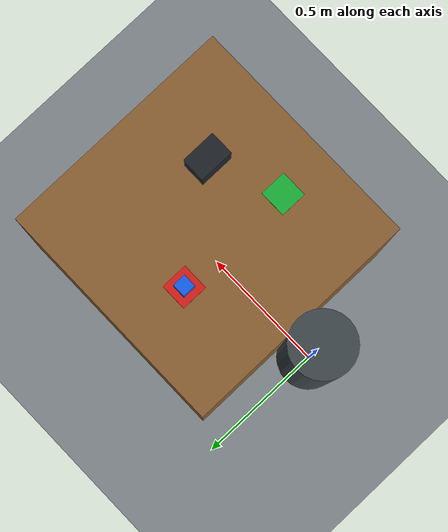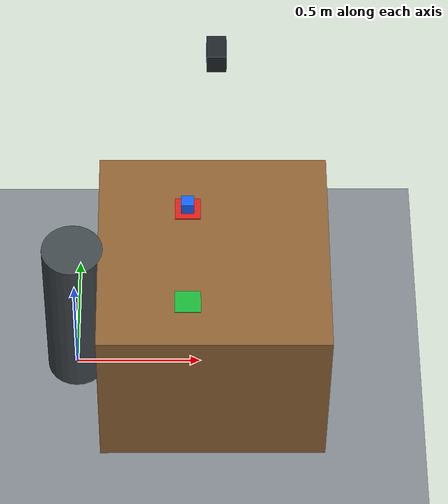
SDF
<?xml version="1.0"?>
<sdf version="1.9">
  <world name="panda_table">
    <physics name="1ms" type="ignored">
      <max_step_size>0.001</max_step_size>
      <real_time_factor>1.0</real_time_factor>
    </physics>

    <plugin filename="gz-sim-physics-system" name="gz::sim::systems::Physics"/>
    <plugin filename="gz-sim-user-commands-system" name="gz::sim::systems::UserCommands"/>
    <plugin filename="gz-sim-scene-broadcaster-system" name="gz::sim::systems::SceneBroadcaster"/>
    <plugin filename="gz-sim-sensors-system" name="gz::sim::systems::Sensors">
      <render_engine>ogre2</render_engine>
    </plugin>

    <light type="directional" name="sun">
      <pose>0 0 10 0 0 0</pose>
      <cast_shadows>true</cast_shadows>
      <diffuse>0.9 0.9 0.9 1</diffuse>
      <specular>0.2 0.2 0.2 1</specular>
      <direction>-0.5 0.2 -0.9</direction>
    </light>

    <model name="ground_plane">
      <static>true</static>
      <link name="ground_link">
        <collision name="collision">
          <geometry><plane><normal>0 0 1</normal><size>20 20</size></plane></geometry>
        </collision>
        <visual name="visual">
          <geometry><plane><normal>0 0 1</normal><size>20 20</size></plane></geometry>
          <material><ambient>0.35 0.38 0.4 1</ambient><diffuse>0.5 0.53 0.55 1</diffuse></material>
        </visual>
      </link>
    </model>

    <model name="table">
      <static>true</static>
      <pose>0.55 0 0.375 0 0 0</pose>
      <link name="table_link">
        <collision name="collision"><geometry><box><size>0.9 0.9 0.75</size></box></geometry></collision>
        <visual name="visual">
          <geometry><box><size>0.9 0.9 0.75</size></box></geometry>
          <material><ambient>0.33 0.22 0.12 1</ambient><diffuse>0.55 0.38 0.2 1</diffuse></material>
        </visual>
      </link>
    </model>

    <model name="robot_pedestal">
      <static>true</static>
      <pose>0 0 0.375 0 0 0</pose>
      <link name="pedestal_link">
        <collision name="collision"><geometry><cylinder><radius>0.12</radius><length>0.75</length></cylinder></geometry></collision>
        <visual name="visual">
          <geometry><cylinder><radius>0.12</radius><length>0.75</length></cylinder></geometry>
          <material><ambient>0.18 0.2 0.22 1</ambient><diffuse>0.25 0.28 0.3 1</diffuse></material>
        </visual>
      </link>
    </model>

    <model name="pick_marker">
      <static>true</static>
      <pose>0.45 0.20 0.752 0 0 0</pose>
      <link name="marker_link">
        <visual name="visual">
          <geometry><box><size>0.10 0.10 0.004</size></box></geometry>
          <material><ambient>0.65 0.1 0.08 1</ambient><diffuse>0.85 0.12 0.1 1</diffuse></material>
        </visual>
      </link>
    </model>

    <model name="place_marker">
      <static>true</static>
      <pose>0.45 -0.25 0.752 0 0 0</pose>
      <link name="marker_link">
        <visual name="visual">
          <geometry><box><size>0.10 0.10 0.004</size></box></geometry>
          <material><ambient>0.08 0.45 0.16 1</ambient><diffuse>0.1 0.7 0.22 1</diffuse></material>
        </visual>
      </link>
    </model>

    <model name="pick_cube">
      <pose>0.45 0.20 0.78 0 0 0</pose>
      <link name="cube_link">
        <inertial>
          <mass>0.08</mass>
          <inertia><ixx>0.000033</ixx><iyy>0.000033</iyy><izz>0.000033</izz></inertia>
        </inertial>
        <collision name="collision"><geometry><box><size>0.05 0.05 0.05</size></box></geometry></collision>
        <visual name="visual">
          <geometry><box><size>0.05 0.05 0.05</size></box></geometry>
          <material><ambient>0.05 0.25 0.7 1</ambient><diffuse>0.08 0.38 0.95 1</diffuse></material>
        </visual>
      </link>
    </model>

    <model name="overhead_depth_camera">
      <static>true</static>
      <pose>0.55 0 1.85 0 1.57079632679 0</pose>
      <link name="camera_link">
        <visual name="housing">
          <pose>-0.04 0 0 0 0 0</pose>
          <geometry><box><size>0.08 0.10 0.07</size></box></geometry>
          <material><ambient>0.08 0.09 0.1 1</ambient><diffuse>0.12 0.14 0.16 1</diffuse></material>
        </visual>
        <sensor name="rgbd_sensor" type="rgbd_camera">
          <always_on>true</always_on>
          <update_rate>5</update_rate>
          <topic>/overhead_camera</topic>
          <gz_frame_id>overhead_camera_optical_frame</gz_frame_id>
          <camera>
            <horizontal_fov>1.0471975512</horizontal_fov>
            <image>
              <width>320</width>
              <height>240</height>
              <format>R8G8B8</format>
            </image>
            <clip><near>0.10</near><far>3.0</far></clip>
            <depth_camera>
              <clip><near>0.10</near><far>3.0</far></clip>
            </depth_camera>
          </camera>
        </sensor>
      </link>
    </model>

    <gui fullscreen="false">
      <plugin filename="MinimalScene" name="3D View">
        <gz-gui>
          <title>3D View</title>
          <property type="bool" key="showTitleBar">false</property>
          <property type="string" key="state">docked</property>
        </gz-gui>
        <engine>ogre2</engine>
        <scene>scene</scene>
        <ambient_light>0.4 0.4 0.4</ambient_light>
        <background_color>0.78 0.80 0.82</background_color>
        <camera_pose>1.85 -1.65 1.55 0 0.31 2.27</camera_pose>
      </plugin>
      <plugin filename="GzSceneManager" name="Scene Manager">
        <gz-gui>
          <property key="state" type="string">floating</property>
          <property key="width" type="double">5</property>
          <property key="height" type="double">5</property>
          <property key="showTitleBar" type="bool">false</property>
        </gz-gui>
      </plugin>
      <plugin filename="InteractiveViewControl" name="Interactive view control">
        <gz-gui>
          <property key="state" type="string">floating</property>
          <property key="width" type="double">5</property>
          <property key="height" type="double">5</property>
          <property key="showTitleBar" type="bool">false</property>
        </gz-gui>
      </plugin>
      <plugin filename="CameraTracking" name="Camera Tracking">
        <gz-gui>
          <property key="state" type="string">floating</property>
          <property key="width" type="double">5</property>
          <property key="height" type="double">5</property>
          <property key="showTitleBar" type="bool">false</property>
        </gz-gui>
      </plugin>
      <plugin filename="EntityContextMenuPlugin" name="Entity context menu">
        <gz-gui>
          <property key="state" type="string">floating</property>
          <property key="width" type="double">5</property>
          <property key="height" type="double">5</property>
          <property key="showTitleBar" type="bool">false</property>
        </gz-gui>
      </plugin>
      <plugin filename="SelectEntities" name="Select Entities">
        <gz-gui>
          <property key="state" type="string">floating</property>
          <property key="width" type="double">5</property>
          <property key="height" type="double">5</property>
          <property key="showTitleBar" type="bool">false</property>
        </gz-gui>
      </plugin>
      <plugin filename="WorldControl" name="World control">
        <gz-gui>
          <title>World control</title>
          <property type="bool" key="showTitleBar">false</property>
          <property type="bool" key="resizable">false</property>
          <property type="double" key="height">72</property>
          <property type="double" key="z">1</property>
          <property type="string" key="state">floating</property>
          <anchors target="3D View">
            <line own="left" target="left"/>
            <line own="bottom" target="bottom"/>
          </anchors>
        </gz-gui>
        <play_pause>true</play_pause>
        <step>true</step>
        <start_paused>false</start_paused>
        <use_event>true</use_event>
      </plugin>
      <plugin filename="WorldStats" name="World stats">
        <gz-gui>
          <title>World stats</title>
          <property type="bool" key="showTitleBar">false</property>
          <property type="bool" key="resizable">false</property>
          <property type="double" key="height">110</property>
          <property type="double" key="width">290</property>
          <property type="double" key="z">1</property>
          <property type="string" key="state">floating</property>
          <anchors target="3D View">
            <line own="right" target="right"/>
            <line own="bottom" target="bottom"/>
          </anchors>
        </gz-gui>
        <sim_time>true</sim_time>
        <real_time>true</real_time>
        <real_time_factor>true</real_time_factor>
        <iterations>true</iterations>
      </plugin>
    </gui>
  </world>
</sdf>
